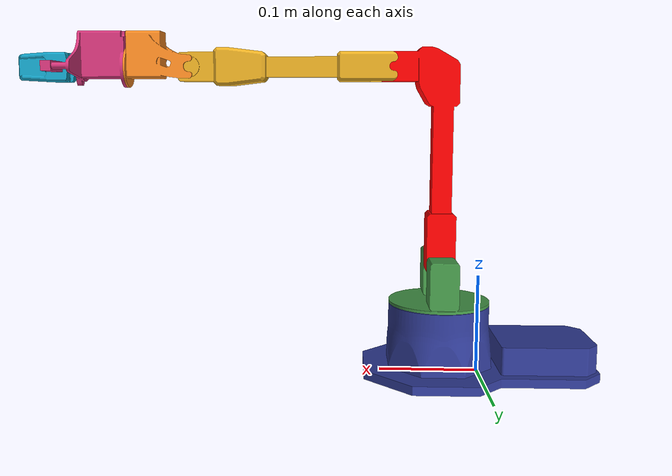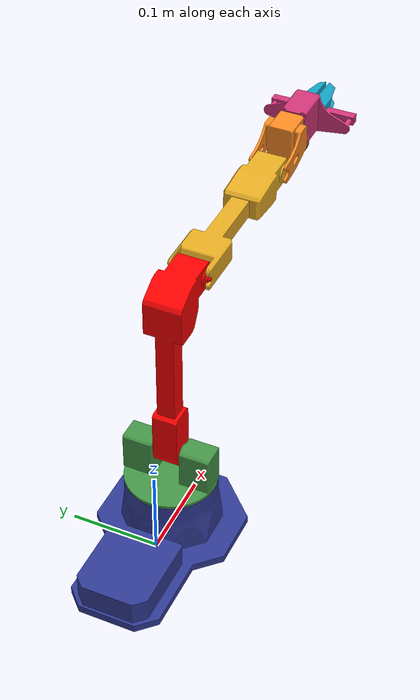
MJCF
<?xml version="1.0"?>
<!-- Generated using onshape-to-robot -->
<!-- Onshape
https://cad.onshape.com/documents/e3921f789fe40c0afb5d0772/w/3040b45b657884b455f5a594/e/282814625c4d8aabf1240bd0 -->
<mujoco model="wx200">
    <compiler angle="radian" meshdir="assets" />
    <default>
        <default class="wx200">
            <joint frictionloss="0.1" armature="0.005" />
            <position kp="50" dampratio="1" forcerange="-35 35" />
        </default>
    </default>

    <worldbody>

        <body name="base" pos="0 0 0" quat="0.7071 0 0 0.7071" childclass="wx200">
            <inertial pos="2.70131e-07 -0.00824666 0.0264502" mass="0.976"
                fullinertia="0.00354168 0.00116937 0.00397238 -3.59126e-08 1.26053e-09 0.000264141" />
            <geom type="mesh" pos="0 -0.040232 1.1921e-10" quat="1 0 0 0" mesh="base"
                material="base_material" />

            <body name="link1" pos="-3.55271e-17 -0.040232 0.069" quat="8.77076e-15 1 -0 -0">
                <joint axis="0 0 1" name="base-1_z" type="hinge" range="-3.14159 3.14159" />
                <inertial pos="-3.97606e-17 -6.21407e-17 -0.0224742" mass="0.124"
                    fullinertia="5.65496e-05 0.00015649 0.00014827 -4.09519e-12 0 0" />
                <geom type="mesh" pos="-5.23051e-11 -5.37617e-08 0" quat="0 1 0 0" mesh="link1"
                    material="link1_material" />

                <body name="link2" pos="-5.23051e-11 4.85723e-17 -0.04125" quat="0.5 0.5 -0.5 -0.5">
                    <joint axis="0 0 1" name="link1-2_x" type="hinge"
                        range="-1.8849555921538759 1.9722220547535925" />
                    <inertial pos="-0.00965008 -0.135057 1.94879e-05" mass="0.211"
                        fullinertia="0.00115115 9.01094e-05 0.00119979 -0.000130485 -2.45666e-08 -5.93831e-08" />
                    <geom type="mesh" pos="-2.77556e-17 -6.38378e-16 0" quat="0.5 0.5 0.5 -0.5"
                        mesh="link2" material="link2_material" />

                    <body name="link3" pos="-0.05 -0.2 0" quat="1 -0 2.22045e-16 -5.55112e-17">
                        <joint axis="0 0 1" name="link2-3_x" type="hinge"
                            range="-1.8849555921538759 1.6231562043547265" />
                        <inertial pos="-0.117776 -3.90352e-09 3.57685e-09" mass="0.185"
                            fullinertia="3.78328e-05 0.000727081 0.000715749 3.65952e-11 -4.11274e-11 2.39756e-11" />
                        <geom type="mesh" pos="-2.77556e-17 -1.90511e-09 0" quat="0.5 0.5 0.5 -0.5"
                            mesh="link3" material="link3_material" />

                        <body name="link4" pos="-0.2 -1.90511e-09 -6.46235e-27"
                            quat="1 -0 -8.32667e-17 -2.08167e-17">
                            <joint axis="0 0 1" name="link3-4_x" type="hinge"
                                range="-1.7453292519943304 2.1467549799530246" />
                            <inertial pos="-0.0444112 -0.0112853 2.08649e-10" mass="0.061"
                                fullinertia="1.84408e-05 1.79804e-05 1.97397e-05 -7.41362e-07 -8.13665e-12 -3.60666e-12" />
                            <geom type="mesh" pos="5.55112e-17 0 6.46235e-27"
                                quat="0.5 0.5 0.5 -0.5" mesh="link4" material="link4_material" />

                            <body name="link5" pos="-0.065 2.22045e-16 3.08117e-17"
                                quat="0.707107 4.21962e-16 0.707107 -2.22045e-16">
                                <joint axis="0 0 1" name="link4-5_y" type="hinge"
                                    range="-3.1415926535897922 3.141592653589794" />
                                <inertial pos="1.69993e-08 -0.00912064 -0.0305201" mass="0.08"
                                    fullinertia="4.35087e-05 4.90546e-05 3.25947e-05 -6.57471e-09 -3.58132e-10 4.82168e-06" />
                                <geom type="mesh" pos="2.90566e-20 5.55112e-17 0.02"
                                    quat="0.707107 0.707107 -4.44089e-16 -4.28399e-16" mesh="link5"
                                    material="link5_material" />

                                <site name="attachment_site" pos="0 0 -0.1" />

                                <body name="gripper" pos="2.71844e-20 -1.54511e-06 -0.066"
                                    quat="0.707107 -1.03681e-15 -0.707107 -1.11022e-16">
                                    <joint axis="0 0 1" name="gripper_l" type="slide"
                                        range="-0.026 0.0" />
                                    <inertial pos="-0.0128459 3.74811e-10 -0.00788501" mass="0.012"
                                        fullinertia="1.13475e-06 2.64639e-06 3.41713e-06 2.099e-14 2.97148e-07 -1.61132e-15" />
                                    <geom type="mesh" pos="0 -1.11022e-16 -0.016"
                                        quat="0.707107 0.707107 5.55112e-16 -5.20151e-16"
                                        mesh="gripper" material="gripper_material" />
                                </body>

                                <body name="gripper_2" pos="2.71844e-20 -1.54511e-06 -0.066"
                                    quat="0.707107 -1.03681e-15 -0.707107 -1.11022e-16">
                                    <joint axis="0 0 1" name="gripper_r" type="slide"
                                        range="0.0 0.026" />
                                    <inertial pos="-0.0128459 -3.74811e-10 0.00788501" mass="0.012"
                                        fullinertia="1.13475e-06 2.64639e-06 3.41713e-06 -2.099e-14 -2.97148e-07 -1.61132e-15" />
                                    <geom type="mesh" pos="0 0 0.016"
                                        quat="0.707107 -0.707107 -4.44089e-16 -4.51402e-16"
                                        mesh="gripper" material="gripper_material" />
                                </body>
                            </body>
                        </body>
                    </body>
                </body>
            </body>
        </body>
    </worldbody>

    <asset>
        <mesh file="link1.stl" />
        <mesh file="link2.stl" />
        <mesh file="base.stl" />
        <mesh file="gripper.stl" />
        <mesh file="link5.stl" />
        <mesh file="link3.stl" />
        <mesh file="link4.stl" />
        <material name="base_material" rgba="0.188235 0.231373 0.588235 1" />
        <material name="link1_material" rgba="0.266667 0.588235 0.282353 1" />
        <material name="link2_material" rgba="1 0 0 1" />
        <material name="link3_material" rgba="0.909804 0.678431 0.137255 1" />
        <material name="link4_material" rgba="0.984314 0.545098 0.137255 1" />
        <material name="link5_material" rgba="0.827451 0.203922 0.47451 1" />
        <material name="gripper_material" rgba="0.0784314 0.639216 0.780392 1" />
    </asset>

    <actuator>
        <position class="wx200" name="base-1_z" joint="base-1_z" inheritrange="1" />
        <position class="wx200" name="link1-2_x" joint="link1-2_x" inheritrange="1" />
        <position class="wx200" name="link2-3_x" joint="link2-3_x" inheritrange="1" />
        <position class="wx200" name="link3-4_x" joint="link3-4_x" inheritrange="1" />
        <position class="wx200" name="link4-5_y" joint="link4-5_y" inheritrange="1" />
        <position class="wx200" name="gripper_l" joint="gripper_l" inheritrange="1" kp="500"/>
    </actuator>

    <equality>
        <joint joint1="gripper_l" joint2="gripper_r" polycoef="0 -1 0 0 0" />
    </equality>

    <contact>
        <exclude body1="base" body2="link1" />
    </contact>
    <keyframe>
        <key name="home" qpos="0 0 0 0 0 -0.01" ctrl="0 0 0 0 0 0" />
    </keyframe>
</mujoco>
